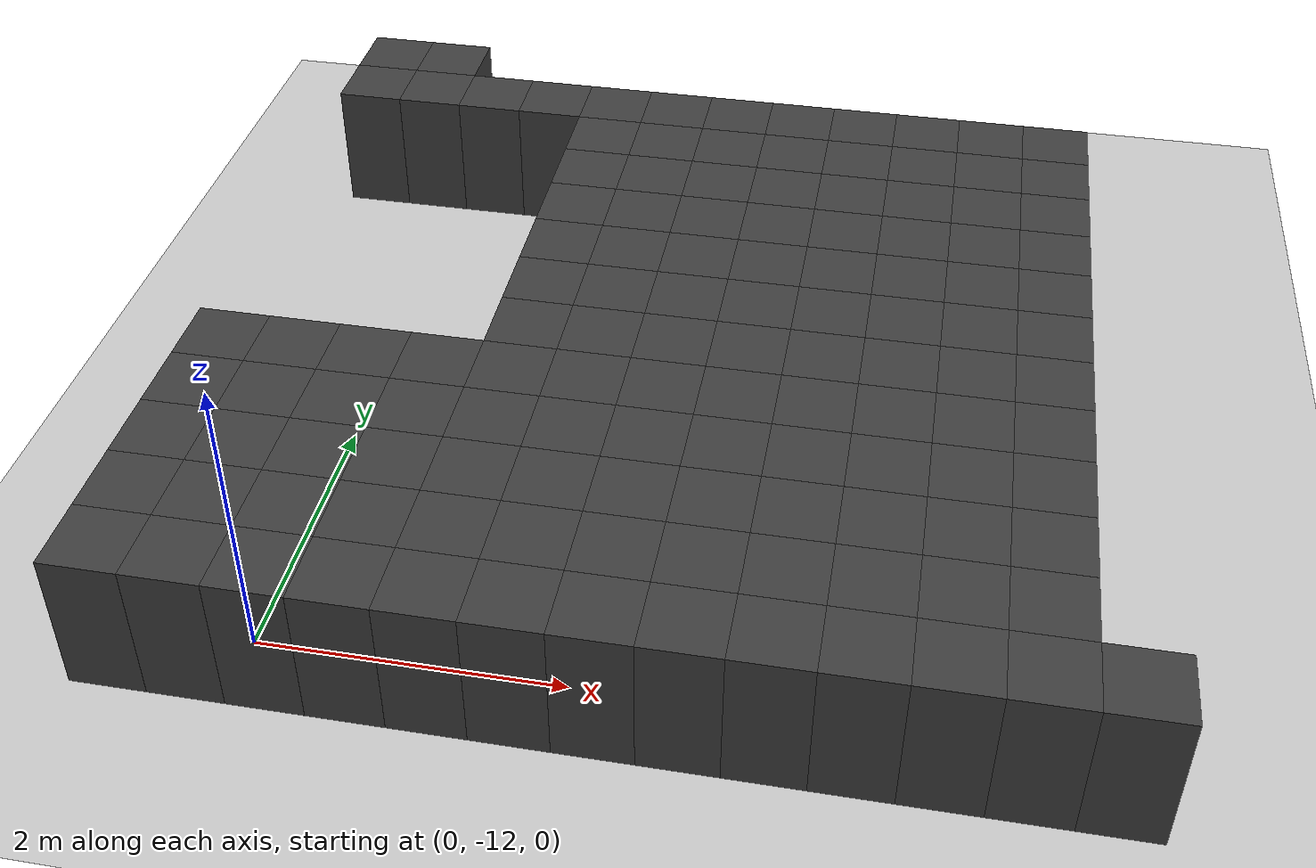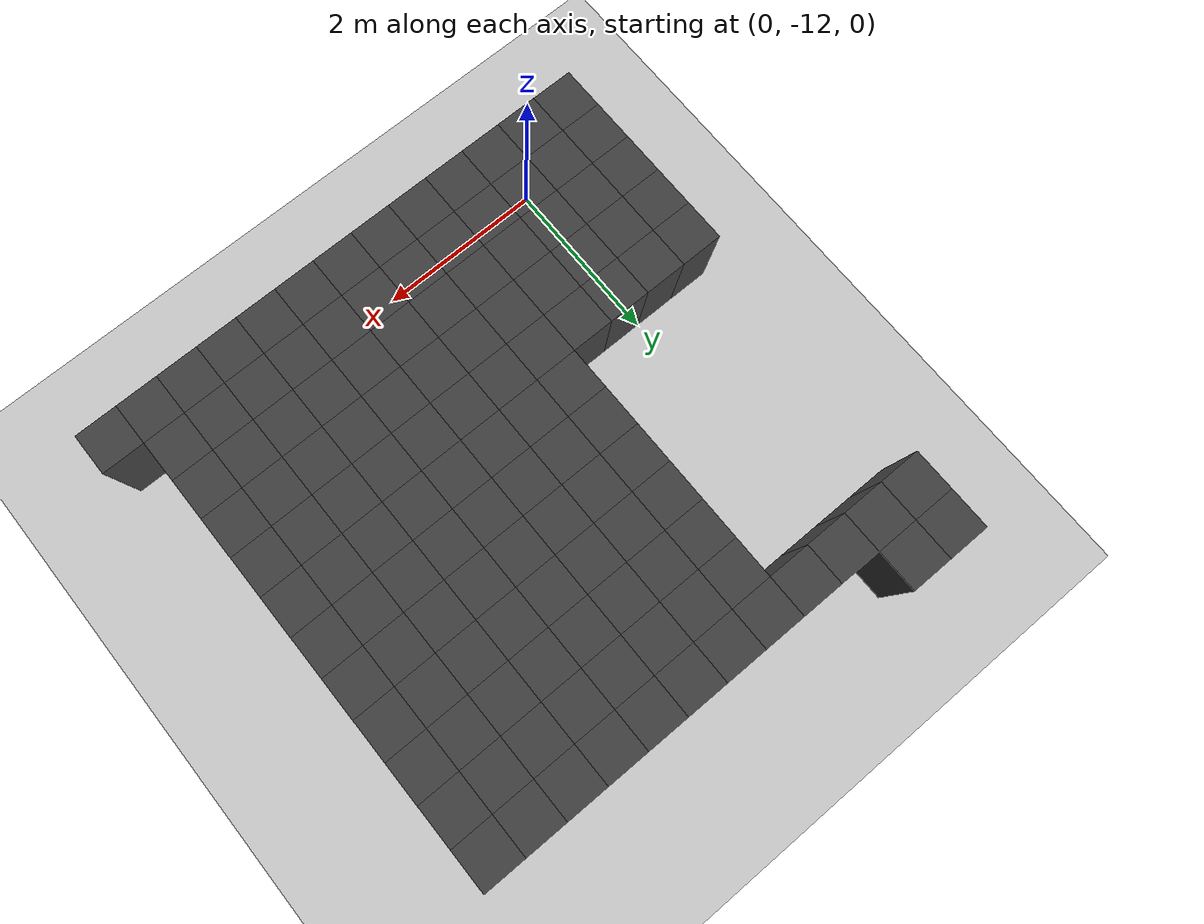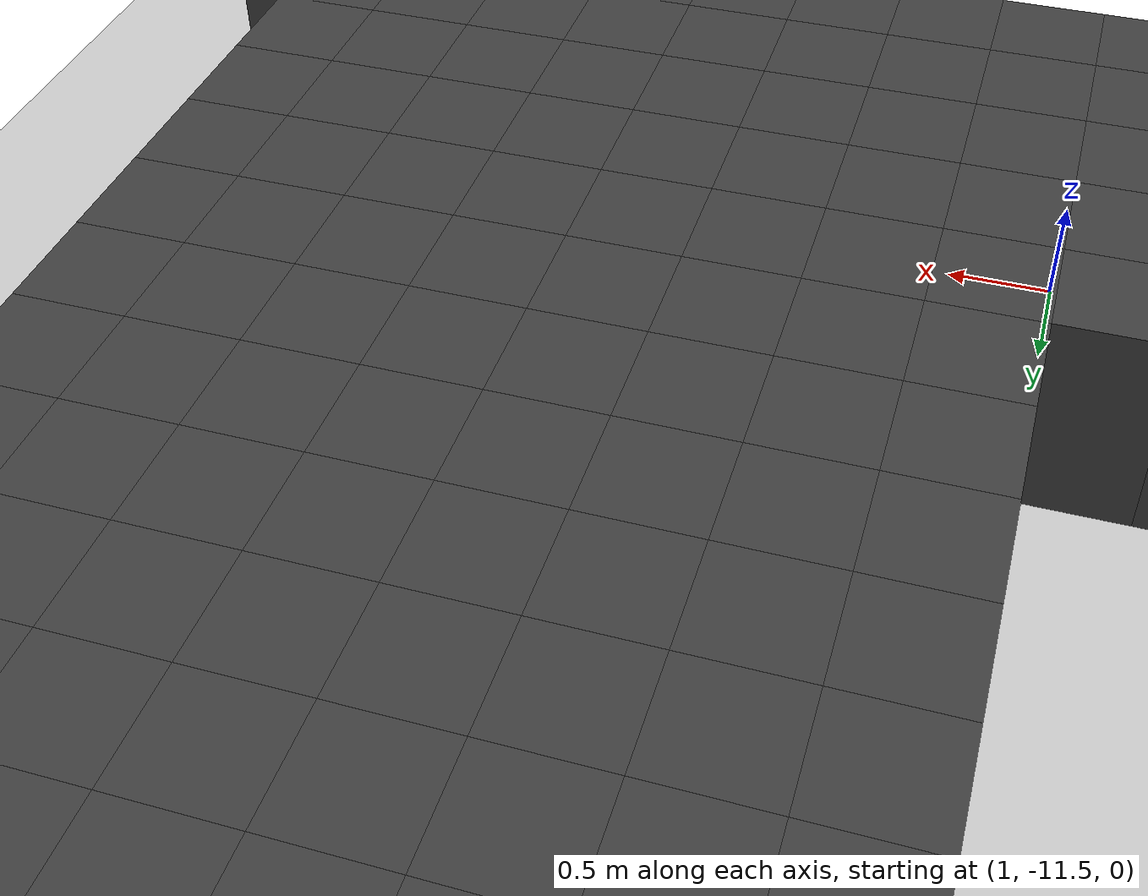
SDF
<sdf version="1.7">
 <world name="map_10726">
  <model name="ground_plane">
   <static>true</static>
   <link name="link">
    <collision name="collision">
     <geometry><plane><normal>0 0 1</normal><size>200 200</size></plane></geometry>
    </collision>
    <visual name="visual">
     <geometry><plane><normal>0 0 1</normal><size>200 200</size></plane></geometry>
     <material><ambient>0.8 0.8 0.8 1</ambient><diffuse>0.8 0.8 0.8 1</diffuse></material>
    </visual>
   </link>
  </model>
  <model name="maze_environment">
   <static>true</static>
   <link name="wall_1570">
    <pose>-0.750 -6.250 0.500 0 0 0</pose>
    <collision name="col"><geometry><box><size>0.5 0.5 1.0</size></box></geometry></collision>
    <visual name="vis">
     <geometry><box><size>0.5 0.5 1.0</size></box></geometry>
     <material><ambient>0.15 0.15 0.15 1</ambient><diffuse>0.25 0.25 0.25 1</diffuse></material>
    </visual>
   </link>
   <link name="wall_1571">
    <pose>-0.250 -6.250 0.500 0 0 0</pose>
    <collision name="col"><geometry><box><size>0.5 0.5 1.0</size></box></geometry></collision>
    <visual name="vis">
     <geometry><box><size>0.5 0.5 1.0</size></box></geometry>
     <material><ambient>0.15 0.15 0.15 1</ambient><diffuse>0.25 0.25 0.25 1</diffuse></material>
    </visual>
   </link>
   <link name="wall_1618">
    <pose>-0.750 -6.750 0.500 0 0 0</pose>
    <collision name="col"><geometry><box><size>0.5 0.5 1.0</size></box></geometry></collision>
    <visual name="vis">
     <geometry><box><size>0.5 0.5 1.0</size></box></geometry>
     <material><ambient>0.15 0.15 0.15 1</ambient><diffuse>0.25 0.25 0.25 1</diffuse></material>
    </visual>
   </link>
   <link name="wall_1619">
    <pose>-0.250 -6.750 0.500 0 0 0</pose>
    <collision name="col"><geometry><box><size>0.5 0.5 1.0</size></box></geometry></collision>
    <visual name="vis">
     <geometry><box><size>0.5 0.5 1.0</size></box></geometry>
     <material><ambient>0.15 0.15 0.15 1</ambient><diffuse>0.25 0.25 0.25 1</diffuse></material>
    </visual>
   </link>
   <link name="wall_1620">
    <pose>0.250 -6.750 0.500 0 0 0</pose>
    <collision name="col"><geometry><box><size>0.5 0.5 1.0</size></box></geometry></collision>
    <visual name="vis">
     <geometry><box><size>0.5 0.5 1.0</size></box></geometry>
     <material><ambient>0.15 0.15 0.15 1</ambient><diffuse>0.25 0.25 0.25 1</diffuse></material>
    </visual>
   </link>
   <link name="wall_1621">
    <pose>0.750 -6.750 0.500 0 0 0</pose>
    <collision name="col"><geometry><box><size>0.5 0.5 1.0</size></box></geometry></collision>
    <visual name="vis">
     <geometry><box><size>0.5 0.5 1.0</size></box></geometry>
     <material><ambient>0.15 0.15 0.15 1</ambient><diffuse>0.25 0.25 0.25 1</diffuse></material>
    </visual>
   </link>
   <link name="wall_1622">
    <pose>1.250 -6.750 0.500 0 0 0</pose>
    <collision name="col"><geometry><box><size>0.5 0.5 1.0</size></box></geometry></collision>
    <visual name="vis">
     <geometry><box><size>0.5 0.5 1.0</size></box></geometry>
     <material><ambient>0.15 0.15 0.15 1</ambient><diffuse>0.25 0.25 0.25 1</diffuse></material>
    </visual>
   </link>
   <link name="wall_1623">
    <pose>1.750 -6.750 0.500 0 0 0</pose>
    <collision name="col"><geometry><box><size>0.5 0.5 1.0</size></box></geometry></collision>
    <visual name="vis">
     <geometry><box><size>0.5 0.5 1.0</size></box></geometry>
     <material><ambient>0.15 0.15 0.15 1</ambient><diffuse>0.25 0.25 0.25 1</diffuse></material>
    </visual>
   </link>
   <link name="wall_1624">
    <pose>2.250 -6.750 0.500 0 0 0</pose>
    <collision name="col"><geometry><box><size>0.5 0.5 1.0</size></box></geometry></collision>
    <visual name="vis">
     <geometry><box><size>0.5 0.5 1.0</size></box></geometry>
     <material><ambient>0.15 0.15 0.15 1</ambient><diffuse>0.25 0.25 0.25 1</diffuse></material>
    </visual>
   </link>
   <link name="wall_1625">
    <pose>2.750 -6.750 0.500 0 0 0</pose>
    <collision name="col"><geometry><box><size>0.5 0.5 1.0</size></box></geometry></collision>
    <visual name="vis">
     <geometry><box><size>0.5 0.5 1.0</size></box></geometry>
     <material><ambient>0.15 0.15 0.15 1</ambient><diffuse>0.25 0.25 0.25 1</diffuse></material>
    </visual>
   </link>
   <link name="wall_1626">
    <pose>3.250 -6.750 0.500 0 0 0</pose>
    <collision name="col"><geometry><box><size>0.5 0.5 1.0</size></box></geometry></collision>
    <visual name="vis">
     <geometry><box><size>0.5 0.5 1.0</size></box></geometry>
     <material><ambient>0.15 0.15 0.15 1</ambient><diffuse>0.25 0.25 0.25 1</diffuse></material>
    </visual>
   </link>
   <link name="wall_1627">
    <pose>3.750 -6.750 0.500 0 0 0</pose>
    <collision name="col"><geometry><box><size>0.5 0.5 1.0</size></box></geometry></collision>
    <visual name="vis">
     <geometry><box><size>0.5 0.5 1.0</size></box></geometry>
     <material><ambient>0.15 0.15 0.15 1</ambient><diffuse>0.25 0.25 0.25 1</diffuse></material>
    </visual>
   </link>
   <link name="wall_1628">
    <pose>4.250 -6.750 0.500 0 0 0</pose>
    <collision name="col"><geometry><box><size>0.5 0.5 1.0</size></box></geometry></collision>
    <visual name="vis">
     <geometry><box><size>0.5 0.5 1.0</size></box></geometry>
     <material><ambient>0.15 0.15 0.15 1</ambient><diffuse>0.25 0.25 0.25 1</diffuse></material>
    </visual>
   </link>
   <link name="wall_1629">
    <pose>4.750 -6.750 0.500 0 0 0</pose>
    <collision name="col"><geometry><box><size>0.5 0.5 1.0</size></box></geometry></collision>
    <visual name="vis">
     <geometry><box><size>0.5 0.5 1.0</size></box></geometry>
     <material><ambient>0.15 0.15 0.15 1</ambient><diffuse>0.25 0.25 0.25 1</diffuse></material>
    </visual>
   </link>
   <link name="wall_1663">
    <pose>1.250 -7.250 0.500 0 0 0</pose>
    <collision name="col"><geometry><box><size>0.5 0.5 1.0</size></box></geometry></collision>
    <visual name="vis">
     <geometry><box><size>0.5 0.5 1.0</size></box></geometry>
     <material><ambient>0.15 0.15 0.15 1</ambient><diffuse>0.25 0.25 0.25 1</diffuse></material>
    </visual>
   </link>
   <link name="wall_1664">
    <pose>1.750 -7.250 0.500 0 0 0</pose>
    <collision name="col"><geometry><box><size>0.5 0.5 1.0</size></box></geometry></collision>
    <visual name="vis">
     <geometry><box><size>0.5 0.5 1.0</size></box></geometry>
     <material><ambient>0.15 0.15 0.15 1</ambient><diffuse>0.25 0.25 0.25 1</diffuse></material>
    </visual>
   </link>
   <link name="wall_1665">
    <pose>2.250 -7.250 0.500 0 0 0</pose>
    <collision name="col"><geometry><box><size>0.5 0.5 1.0</size></box></geometry></collision>
    <visual name="vis">
     <geometry><box><size>0.5 0.5 1.0</size></box></geometry>
     <material><ambient>0.15 0.15 0.15 1</ambient><diffuse>0.25 0.25 0.25 1</diffuse></material>
    </visual>
   </link>
   <link name="wall_1666">
    <pose>2.750 -7.250 0.500 0 0 0</pose>
    <collision name="col"><geometry><box><size>0.5 0.5 1.0</size></box></geometry></collision>
    <visual name="vis">
     <geometry><box><size>0.5 0.5 1.0</size></box></geometry>
     <material><ambient>0.15 0.15 0.15 1</ambient><diffuse>0.25 0.25 0.25 1</diffuse></material>
    </visual>
   </link>
   <link name="wall_1667">
    <pose>3.250 -7.250 0.500 0 0 0</pose>
    <collision name="col"><geometry><box><size>0.5 0.5 1.0</size></box></geometry></collision>
    <visual name="vis">
     <geometry><box><size>0.5 0.5 1.0</size></box></geometry>
     <material><ambient>0.15 0.15 0.15 1</ambient><diffuse>0.25 0.25 0.25 1</diffuse></material>
    </visual>
   </link>
   <link name="wall_1668">
    <pose>3.750 -7.250 0.500 0 0 0</pose>
    <collision name="col"><geometry><box><size>0.5 0.5 1.0</size></box></geometry></collision>
    <visual name="vis">
     <geometry><box><size>0.5 0.5 1.0</size></box></geometry>
     <material><ambient>0.15 0.15 0.15 1</ambient><diffuse>0.25 0.25 0.25 1</diffuse></material>
    </visual>
   </link>
   <link name="wall_1669">
    <pose>4.250 -7.250 0.500 0 0 0</pose>
    <collision name="col"><geometry><box><size>0.5 0.5 1.0</size></box></geometry></collision>
    <visual name="vis">
     <geometry><box><size>0.5 0.5 1.0</size></box></geometry>
     <material><ambient>0.15 0.15 0.15 1</ambient><diffuse>0.25 0.25 0.25 1</diffuse></material>
    </visual>
   </link>
   <link name="wall_1670">
    <pose>4.750 -7.250 0.500 0 0 0</pose>
    <collision name="col"><geometry><box><size>0.5 0.5 1.0</size></box></geometry></collision>
    <visual name="vis">
     <geometry><box><size>0.5 0.5 1.0</size></box></geometry>
     <material><ambient>0.15 0.15 0.15 1</ambient><diffuse>0.25 0.25 0.25 1</diffuse></material>
    </visual>
   </link>
   <link name="wall_1700">
    <pose>1.250 -7.750 0.500 0 0 0</pose>
    <collision name="col"><geometry><box><size>0.5 0.5 1.0</size></box></geometry></collision>
    <visual name="vis">
     <geometry><box><size>0.5 0.5 1.0</size></box></geometry>
     <material><ambient>0.15 0.15 0.15 1</ambient><diffuse>0.25 0.25 0.25 1</diffuse></material>
    </visual>
   </link>
   <link name="wall_1701">
    <pose>1.750 -7.750 0.500 0 0 0</pose>
    <collision name="col"><geometry><box><size>0.5 0.5 1.0</size></box></geometry></collision>
    <visual name="vis">
     <geometry><box><size>0.5 0.5 1.0</size></box></geometry>
     <material><ambient>0.15 0.15 0.15 1</ambient><diffuse>0.25 0.25 0.25 1</diffuse></material>
    </visual>
   </link>
   <link name="wall_1702">
    <pose>2.250 -7.750 0.500 0 0 0</pose>
    <collision name="col"><geometry><box><size>0.5 0.5 1.0</size></box></geometry></collision>
    <visual name="vis">
     <geometry><box><size>0.5 0.5 1.0</size></box></geometry>
     <material><ambient>0.15 0.15 0.15 1</ambient><diffuse>0.25 0.25 0.25 1</diffuse></material>
    </visual>
   </link>
   <link name="wall_1703">
    <pose>2.750 -7.750 0.500 0 0 0</pose>
    <collision name="col"><geometry><box><size>0.5 0.5 1.0</size></box></geometry></collision>
    <visual name="vis">
     <geometry><box><size>0.5 0.5 1.0</size></box></geometry>
     <material><ambient>0.15 0.15 0.15 1</ambient><diffuse>0.25 0.25 0.25 1</diffuse></material>
    </visual>
   </link>
   <link name="wall_1704">
    <pose>3.250 -7.750 0.500 0 0 0</pose>
    <collision name="col"><geometry><box><size>0.5 0.5 1.0</size></box></geometry></collision>
    <visual name="vis">
     <geometry><box><size>0.5 0.5 1.0</size></box></geometry>
     <material><ambient>0.15 0.15 0.15 1</ambient><diffuse>0.25 0.25 0.25 1</diffuse></material>
    </visual>
   </link>
   <link name="wall_1705">
    <pose>3.750 -7.750 0.500 0 0 0</pose>
    <collision name="col"><geometry><box><size>0.5 0.5 1.0</size></box></geometry></collision>
    <visual name="vis">
     <geometry><box><size>0.5 0.5 1.0</size></box></geometry>
     <material><ambient>0.15 0.15 0.15 1</ambient><diffuse>0.25 0.25 0.25 1</diffuse></material>
    </visual>
   </link>
   <link name="wall_1706">
    <pose>4.250 -7.750 0.500 0 0 0</pose>
    <collision name="col"><geometry><box><size>0.5 0.5 1.0</size></box></geometry></collision>
    <visual name="vis">
     <geometry><box><size>0.5 0.5 1.0</size></box></geometry>
     <material><ambient>0.15 0.15 0.15 1</ambient><diffuse>0.25 0.25 0.25 1</diffuse></material>
    </visual>
   </link>
   <link name="wall_1707">
    <pose>4.750 -7.750 0.500 0 0 0</pose>
    <collision name="col"><geometry><box><size>0.5 0.5 1.0</size></box></geometry></collision>
    <visual name="vis">
     <geometry><box><size>0.5 0.5 1.0</size></box></geometry>
     <material><ambient>0.15 0.15 0.15 1</ambient><diffuse>0.25 0.25 0.25 1</diffuse></material>
    </visual>
   </link>
   <link name="wall_1737">
    <pose>1.250 -8.250 0.500 0 0 0</pose>
    <collision name="col"><geometry><box><size>0.5 0.5 1.0</size></box></geometry></collision>
    <visual name="vis">
     <geometry><box><size>0.5 0.5 1.0</size></box></geometry>
     <material><ambient>0.15 0.15 0.15 1</ambient><diffuse>0.25 0.25 0.25 1</diffuse></material>
    </visual>
   </link>
   <link name="wall_1738">
    <pose>1.750 -8.250 0.500 0 0 0</pose>
    <collision name="col"><geometry><box><size>0.5 0.5 1.0</size></box></geometry></collision>
    <visual name="vis">
     <geometry><box><size>0.5 0.5 1.0</size></box></geometry>
     <material><ambient>0.15 0.15 0.15 1</ambient><diffuse>0.25 0.25 0.25 1</diffuse></material>
    </visual>
   </link>
   <link name="wall_1739">
    <pose>2.250 -8.250 0.500 0 0 0</pose>
    <collision name="col"><geometry><box><size>0.5 0.5 1.0</size></box></geometry></collision>
    <visual name="vis">
     <geometry><box><size>0.5 0.5 1.0</size></box></geometry>
     <material><ambient>0.15 0.15 0.15 1</ambient><diffuse>0.25 0.25 0.25 1</diffuse></material>
    </visual>
   </link>
   <link name="wall_1740">
    <pose>2.750 -8.250 0.500 0 0 0</pose>
    <collision name="col"><geometry><box><size>0.5 0.5 1.0</size></box></geometry></collision>
    <visual name="vis">
     <geometry><box><size>0.5 0.5 1.0</size></box></geometry>
     <material><ambient>0.15 0.15 0.15 1</ambient><diffuse>0.25 0.25 0.25 1</diffuse></material>
    </visual>
   </link>
   <link name="wall_1741">
    <pose>3.250 -8.250 0.500 0 0 0</pose>
    <collision name="col"><geometry><box><size>0.5 0.5 1.0</size></box></geometry></collision>
    <visual name="vis">
     <geometry><box><size>0.5 0.5 1.0</size></box></geometry>
     <material><ambient>0.15 0.15 0.15 1</ambient><diffuse>0.25 0.25 0.25 1</diffuse></material>
    </visual>
   </link>
   <link name="wall_1742">
    <pose>3.750 -8.250 0.500 0 0 0</pose>
    <collision name="col"><geometry><box><size>0.5 0.5 1.0</size></box></geometry></collision>
    <visual name="vis">
     <geometry><box><size>0.5 0.5 1.0</size></box></geometry>
     <material><ambient>0.15 0.15 0.15 1</ambient><diffuse>0.25 0.25 0.25 1</diffuse></material>
    </visual>
   </link>
   <link name="wall_1743">
    <pose>4.250 -8.250 0.500 0 0 0</pose>
    <collision name="col"><geometry><box><size>0.5 0.5 1.0</size></box></geometry></collision>
    <visual name="vis">
     <geometry><box><size>0.5 0.5 1.0</size></box></geometry>
     <material><ambient>0.15 0.15 0.15 1</ambient><diffuse>0.25 0.25 0.25 1</diffuse></material>
    </visual>
   </link>
   <link name="wall_1744">
    <pose>4.750 -8.250 0.500 0 0 0</pose>
    <collision name="col"><geometry><box><size>0.5 0.5 1.0</size></box></geometry></collision>
    <visual name="vis">
     <geometry><box><size>0.5 0.5 1.0</size></box></geometry>
     <material><ambient>0.15 0.15 0.15 1</ambient><diffuse>0.25 0.25 0.25 1</diffuse></material>
    </visual>
   </link>
   <link name="wall_1774">
    <pose>1.250 -8.750 0.500 0 0 0</pose>
    <collision name="col"><geometry><box><size>0.5 0.5 1.0</size></box></geometry></collision>
    <visual name="vis">
     <geometry><box><size>0.5 0.5 1.0</size></box></geometry>
     <material><ambient>0.15 0.15 0.15 1</ambient><diffuse>0.25 0.25 0.25 1</diffuse></material>
    </visual>
   </link>
   <link name="wall_1775">
    <pose>1.750 -8.750 0.500 0 0 0</pose>
    <collision name="col"><geometry><box><size>0.5 0.5 1.0</size></box></geometry></collision>
    <visual name="vis">
     <geometry><box><size>0.5 0.5 1.0</size></box></geometry>
     <material><ambient>0.15 0.15 0.15 1</ambient><diffuse>0.25 0.25 0.25 1</diffuse></material>
    </visual>
   </link>
   <link name="wall_1776">
    <pose>2.250 -8.750 0.500 0 0 0</pose>
    <collision name="col"><geometry><box><size>0.5 0.5 1.0</size></box></geometry></collision>
    <visual name="vis">
     <geometry><box><size>0.5 0.5 1.0</size></box></geometry>
     <material><ambient>0.15 0.15 0.15 1</ambient><diffuse>0.25 0.25 0.25 1</diffuse></material>
    </visual>
   </link>
   <link name="wall_1777">
    <pose>2.750 -8.750 0.500 0 0 0</pose>
    <collision name="col"><geometry><box><size>0.5 0.5 1.0</size></box></geometry></collision>
    <visual name="vis">
     <geometry><box><size>0.5 0.5 1.0</size></box></geometry>
     <material><ambient>0.15 0.15 0.15 1</ambient><diffuse>0.25 0.25 0.25 1</diffuse></material>
    </visual>
   </link>
   <link name="wall_1778">
    <pose>3.250 -8.750 0.500 0 0 0</pose>
    <collision name="col"><geometry><box><size>0.5 0.5 1.0</size></box></geometry></collision>
    <visual name="vis">
     <geometry><box><size>0.5 0.5 1.0</size></box></geometry>
     <material><ambient>0.15 0.15 0.15 1</ambient><diffuse>0.25 0.25 0.25 1</diffuse></material>
    </visual>
   </link>
   <link name="wall_1779">
    <pose>3.750 -8.750 0.500 0 0 0</pose>
    <collision name="col"><geometry><box><size>0.5 0.5 1.0</size></box></geometry></collision>
    <visual name="vis">
     <geometry><box><size>0.5 0.5 1.0</size></box></geometry>
     <material><ambient>0.15 0.15 0.15 1</ambient><diffuse>0.25 0.25 0.25 1</diffuse></material>
    </visual>
   </link>
   <link name="wall_1780">
    <pose>4.250 -8.750 0.500 0 0 0</pose>
    <collision name="col"><geometry><box><size>0.5 0.5 1.0</size></box></geometry></collision>
    <visual name="vis">
     <geometry><box><size>0.5 0.5 1.0</size></box></geometry>
     <material><ambient>0.15 0.15 0.15 1</ambient><diffuse>0.25 0.25 0.25 1</diffuse></material>
    </visual>
   </link>
   <link name="wall_1781">
    <pose>4.750 -8.750 0.500 0 0 0</pose>
    <collision name="col"><geometry><box><size>0.5 0.5 1.0</size></box></geometry></collision>
    <visual name="vis">
     <geometry><box><size>0.5 0.5 1.0</size></box></geometry>
     <material><ambient>0.15 0.15 0.15 1</ambient><diffuse>0.25 0.25 0.25 1</diffuse></material>
    </visual>
   </link>
   <link name="wall_1810">
    <pose>1.250 -9.250 0.500 0 0 0</pose>
    <collision name="col"><geometry><box><size>0.5 0.5 1.0</size></box></geometry></collision>
    <visual name="vis">
     <geometry><box><size>0.5 0.5 1.0</size></box></geometry>
     <material><ambient>0.15 0.15 0.15 1</ambient><diffuse>0.25 0.25 0.25 1</diffuse></material>
    </visual>
   </link>
   <link name="wall_1811">
    <pose>1.750 -9.250 0.500 0 0 0</pose>
    <collision name="col"><geometry><box><size>0.5 0.5 1.0</size></box></geometry></collision>
    <visual name="vis">
     <geometry><box><size>0.5 0.5 1.0</size></box></geometry>
     <material><ambient>0.15 0.15 0.15 1</ambient><diffuse>0.25 0.25 0.25 1</diffuse></material>
    </visual>
   </link>
   <link name="wall_1812">
    <pose>2.250 -9.250 0.500 0 0 0</pose>
    <collision name="col"><geometry><box><size>0.5 0.5 1.0</size></box></geometry></collision>
    <visual name="vis">
     <geometry><box><size>0.5 0.5 1.0</size></box></geometry>
     <material><ambient>0.15 0.15 0.15 1</ambient><diffuse>0.25 0.25 0.25 1</diffuse></material>
    </visual>
   </link>
   <link name="wall_1813">
    <pose>2.750 -9.250 0.500 0 0 0</pose>
    <collision name="col"><geometry><box><size>0.5 0.5 1.0</size></box></geometry></collision>
    <visual name="vis">
     <geometry><box><size>0.5 0.5 1.0</size></box></geometry>
     <material><ambient>0.15 0.15 0.15 1</ambient><diffuse>0.25 0.25 0.25 1</diffuse></material>
    </visual>
   </link>
   <link name="wall_1814">
    <pose>3.250 -9.250 0.500 0 0 0</pose>
    <collision name="col"><geometry><box><size>0.5 0.5 1.0</size></box></geometry></collision>
    <visual name="vis">
     <geometry><box><size>0.5 0.5 1.0</size></box></geometry>
     <material><ambient>0.15 0.15 0.15 1</ambient><diffuse>0.25 0.25 0.25 1</diffuse></material>
    </visual>
   </link>
   <link name="wall_1815">
    <pose>3.750 -9.250 0.500 0 0 0</pose>
    <collision name="col"><geometry><box><size>0.5 0.5 1.0</size></box></geometry></collision>
    <visual name="vis">
     <geometry><box><size>0.5 0.5 1.0</size></box></geometry>
     <material><ambient>0.15 0.15 0.15 1</ambient><diffuse>0.25 0.25 0.25 1</diffuse></material>
    </visual>
   </link>
   <link name="wall_1816">
    <pose>4.250 -9.250 0.500 0 0 0</pose>
    <collision name="col"><geometry><box><size>0.5 0.5 1.0</size></box></geometry></collision>
    <visual name="vis">
     <geometry><box><size>0.5 0.5 1.0</size></box></geometry>
     <material><ambient>0.15 0.15 0.15 1</ambient><diffuse>0.25 0.25 0.25 1</diffuse></material>
    </visual>
   </link>
   <link name="wall_1817">
    <pose>4.750 -9.250 0.500 0 0 0</pose>
    <collision name="col"><geometry><box><size>0.5 0.5 1.0</size></box></geometry></collision>
    <visual name="vis">
     <geometry><box><size>0.5 0.5 1.0</size></box></geometry>
     <material><ambient>0.15 0.15 0.15 1</ambient><diffuse>0.25 0.25 0.25 1</diffuse></material>
    </visual>
   </link>
   <link name="wall_1848">
    <pose>1.250 -9.750 0.500 0 0 0</pose>
    <collision name="col"><geometry><box><size>0.5 0.5 1.0</size></box></geometry></collision>
    <visual name="vis">
     <geometry><box><size>0.5 0.5 1.0</size></box></geometry>
     <material><ambient>0.15 0.15 0.15 1</ambient><diffuse>0.25 0.25 0.25 1</diffuse></material>
    </visual>
   </link>
   <link name="wall_1849">
    <pose>1.750 -9.750 0.500 0 0 0</pose>
    <collision name="col"><geometry><box><size>0.5 0.5 1.0</size></box></geometry></collision>
    <visual name="vis">
     <geometry><box><size>0.5 0.5 1.0</size></box></geometry>
     <material><ambient>0.15 0.15 0.15 1</ambient><diffuse>0.25 0.25 0.25 1</diffuse></material>
    </visual>
   </link>
   <link name="wall_1850">
    <pose>2.250 -9.750 0.500 0 0 0</pose>
    <collision name="col"><geometry><box><size>0.5 0.5 1.0</size></box></geometry></collision>
    <visual name="vis">
     <geometry><box><size>0.5 0.5 1.0</size></box></geometry>
     <material><ambient>0.15 0.15 0.15 1</ambient><diffuse>0.25 0.25 0.25 1</diffuse></material>
    </visual>
   </link>
   <link name="wall_1851">
    <pose>2.750 -9.750 0.500 0 0 0</pose>
    <collision name="col"><geometry><box><size>0.5 0.5 1.0</size></box></geometry></collision>
    <visual name="vis">
     <geometry><box><size>0.5 0.5 1.0</size></box></geometry>
     <material><ambient>0.15 0.15 0.15 1</ambient><diffuse>0.25 0.25 0.25 1</diffuse></material>
    </visual>
   </link>
   <link name="wall_1852">
    <pose>3.250 -9.750 0.500 0 0 0</pose>
    <collision name="col"><geometry><box><size>0.5 0.5 1.0</size></box></geometry></collision>
    <visual name="vis">
     <geometry><box><size>0.5 0.5 1.0</size></box></geometry>
     <material><ambient>0.15 0.15 0.15 1</ambient><diffuse>0.25 0.25 0.25 1</diffuse></material>
    </visual>
   </link>
   <link name="wall_1853">
    <pose>3.750 -9.750 0.500 0 0 0</pose>
    <collision name="col"><geometry><box><size>0.5 0.5 1.0</size></box></geometry></collision>
    <visual name="vis">
     <geometry><box><size>0.5 0.5 1.0</size></box></geometry>
     <material><ambient>0.15 0.15 0.15 1</ambient><diffuse>0.25 0.25 0.25 1</diffuse></material>
    </visual>
   </link>
   <link name="wall_1854">
    <pose>4.250 -9.750 0.500 0 0 0</pose>
    <collision name="col"><geometry><box><size>0.5 0.5 1.0</size></box></geometry></collision>
    <visual name="vis">
     <geometry><box><size>0.5 0.5 1.0</size></box></geometry>
     <material><ambient>0.15 0.15 0.15 1</ambient><diffuse>0.25 0.25 0.25 1</diffuse></material>
    </visual>
   </link>
   <link name="wall_1855">
    <pose>4.750 -9.750 0.500 0 0 0</pose>
    <collision name="col"><geometry><box><size>0.5 0.5 1.0</size></box></geometry></collision>
    <visual name="vis">
     <geometry><box><size>0.5 0.5 1.0</size></box></geometry>
     <material><ambient>0.15 0.15 0.15 1</ambient><diffuse>0.25 0.25 0.25 1</diffuse></material>
    </visual>
   </link>
   <link name="wall_1890">
    <pose>-0.750 -10.250 0.500 0 0 0</pose>
    <collision name="col"><geometry><box><size>0.5 0.5 1.0</size></box></geometry></collision>
    <visual name="vis">
     <geometry><box><size>0.5 0.5 1.0</size></box></geometry>
     <material><ambient>0.15 0.15 0.15 1</ambient><diffuse>0.25 0.25 0.25 1</diffuse></material>
    </visual>
   </link>
   <link name="wall_1891">
    <pose>-0.250 -10.250 0.500 0 0 0</pose>
    <collision name="col"><geometry><box><size>0.5 0.5 1.0</size></box></geometry></collision>
    <visual name="vis">
     <geometry><box><size>0.5 0.5 1.0</size></box></geometry>
     <material><ambient>0.15 0.15 0.15 1</ambient><diffuse>0.25 0.25 0.25 1</diffuse></material>
    </visual>
   </link>
   <link name="wall_1892">
    <pose>0.250 -10.250 0.500 0 0 0</pose>
    <collision name="col"><geometry><box><size>0.5 0.5 1.0</size></box></geometry></collision>
    <visual name="vis">
     <geometry><box><size>0.5 0.5 1.0</size></box></geometry>
     <material><ambient>0.15 0.15 0.15 1</ambient><diffuse>0.25 0.25 0.25 1</diffuse></material>
    </visual>
   </link>
   <link name="wall_1893">
    <pose>0.750 -10.250 0.500 0 0 0</pose>
    <collision name="col"><geometry><box><size>0.5 0.5 1.0</size></box></geometry></collision>
    <visual name="vis">
     <geometry><box><size>0.5 0.5 1.0</size></box></geometry>
     <material><ambient>0.15 0.15 0.15 1</ambient><diffuse>0.25 0.25 0.25 1</diffuse></material>
    </visual>
   </link>
   <link name="wall_1894">
    <pose>1.250 -10.250 0.500 0 0 0</pose>
    <collision name="col"><geometry><box><size>0.5 0.5 1.0</size></box></geometry></collision>
    <visual name="vis">
     <geometry><box><size>0.5 0.5 1.0</size></box></geometry>
     <material><ambient>0.15 0.15 0.15 1</ambient><diffuse>0.25 0.25 0.25 1</diffuse></material>
    </visual>
   </link>
   <link name="wall_1895">
    <pose>1.750 -10.250 0.500 0 0 0</pose>
    <collision name="col"><geometry><box><size>0.5 0.5 1.0</size></box></geometry></collision>
    <visual name="vis">
     <geometry><box><size>0.5 0.5 1.0</size></box></geometry>
     <material><ambient>0.15 0.15 0.15 1</ambient><diffuse>0.25 0.25 0.25 1</diffuse></material>
    </visual>
   </link>
   <link name="wall_1896">
    <pose>2.250 -10.250 0.500 0 0 0</pose>
    <collision name="col"><geometry><box><size>0.5 0.5 1.0</size></box></geometry></collision>
    <visual name="vis">
     <geometry><box><size>0.5 0.5 1.0</size></box></geometry>
     <material><ambient>0.15 0.15 0.15 1</ambient><diffuse>0.25 0.25 0.25 1</diffuse></material>
    </visual>
   </link>
   <link name="wall_1897">
    <pose>2.750 -10.250 0.500 0 0 0</pose>
    <collision name="col"><geometry><box><size>0.5 0.5 1.0</size></box></geometry></collision>
    <visual name="vis">
     <geometry><box><size>0.5 0.5 1.0</size></box></geometry>
     <material><ambient>0.15 0.15 0.15 1</ambient><diffuse>0.25 0.25 0.25 1</diffuse></material>
    </visual>
   </link>
   <link name="wall_1898">
    <pose>3.250 -10.250 0.500 0 0 0</pose>
    <collision name="col"><geometry><box><size>0.5 0.5 1.0</size></box></geometry></collision>
    <visual name="vis">
     <geometry><box><size>0.5 0.5 1.0</size></box></geometry>
     <material><ambient>0.15 0.15 0.15 1</ambient><diffuse>0.25 0.25 0.25 1</diffuse></material>
    </visual>
   </link>
   <link name="wall_1899">
    <pose>3.750 -10.250 0.500 0 0 0</pose>
    <collision name="col"><geometry><box><size>0.5 0.5 1.0</size></box></geometry></collision>
    <visual name="vis">
     <geometry><box><size>0.5 0.5 1.0</size></box></geometry>
     <material><ambient>0.15 0.15 0.15 1</ambient><diffuse>0.25 0.25 0.25 1</diffuse></material>
    </visual>
   </link>
   <link name="wall_1900">
    <pose>4.250 -10.250 0.500 0 0 0</pose>
    <collision name="col"><geometry><box><size>0.5 0.5 1.0</size></box></geometry></collision>
    <visual name="vis">
     <geometry><box><size>0.5 0.5 1.0</size></box></geometry>
     <material><ambient>0.15 0.15 0.15 1</ambient><diffuse>0.25 0.25 0.25 1</diffuse></material>
    </visual>
   </link>
   <link name="wall_1901">
    <pose>4.750 -10.250 0.500 0 0 0</pose>
    <collision name="col"><geometry><box><size>0.5 0.5 1.0</size></box></geometry></collision>
    <visual name="vis">
     <geometry><box><size>0.5 0.5 1.0</size></box></geometry>
     <material><ambient>0.15 0.15 0.15 1</ambient><diffuse>0.25 0.25 0.25 1</diffuse></material>
    </visual>
   </link>
   <link name="wall_1936">
    <pose>-0.750 -10.750 0.500 0 0 0</pose>
    <collision name="col"><geometry><box><size>0.5 0.5 1.0</size></box></geometry></collision>
    <visual name="vis">
     <geometry><box><size>0.5 0.5 1.0</size></box></geometry>
     <material><ambient>0.15 0.15 0.15 1</ambient><diffuse>0.25 0.25 0.25 1</diffuse></material>
    </visual>
   </link>
   <link name="wall_1937">
    <pose>-0.250 -10.750 0.500 0 0 0</pose>
    <collision name="col"><geometry><box><size>0.5 0.5 1.0</size></box></geometry></collision>
    <visual name="vis">
     <geometry><box><size>0.5 0.5 1.0</size></box></geometry>
     <material><ambient>0.15 0.15 0.15 1</ambient><diffuse>0.25 0.25 0.25 1</diffuse></material>
    </visual>
   </link>
   <link name="wall_1938">
    <pose>0.250 -10.750 0.500 0 0 0</pose>
    <collision name="col"><geometry><box><size>0.5 0.5 1.0</size></box></geometry></collision>
    <visual name="vis">
     <geometry><box><size>0.5 0.5 1.0</size></box></geometry>
     <material><ambient>0.15 0.15 0.15 1</ambient><diffuse>0.25 0.25 0.25 1</diffuse></material>
    </visual>
   </link>
   <link name="wall_1939">
    <pose>0.750 -10.750 0.500 0 0 0</pose>
    <collision name="col"><geometry><box><size>0.5 0.5 1.0</size></box></geometry></collision>
    <visual name="vis">
     <geometry><box><size>0.5 0.5 1.0</size></box></geometry>
     <material><ambient>0.15 0.15 0.15 1</ambient><diffuse>0.25 0.25 0.25 1</diffuse></material>
    </visual>
   </link>
   <link name="wall_1940">
    <pose>1.250 -10.750 0.500 0 0 0</pose>
    <collision name="col"><geometry><box><size>0.5 0.5 1.0</size></box></geometry></collision>
    <visual name="vis">
     <geometry><box><size>0.5 0.5 1.0</size></box></geometry>
     <material><ambient>0.15 0.15 0.15 1</ambient><diffuse>0.25 0.25 0.25 1</diffuse></material>
    </visual>
   </link>
   <link name="wall_1941">
    <pose>1.750 -10.750 0.500 0 0 0</pose>
    <collision name="col"><geometry><box><size>0.5 0.5 1.0</size></box></geometry></collision>
    <visual name="vis">
     <geometry><box><size>0.5 0.5 1.0</size></box></geometry>
     <material><ambient>0.15 0.15 0.15 1</ambient><diffuse>0.25 0.25 0.25 1</diffuse></material>
    </visual>
   </link>
   <link name="wall_1942">
    <pose>2.250 -10.750 0.500 0 0 0</pose>
    <collision name="col"><geometry><box><size>0.5 0.5 1.0</size></box></geometry></collision>
    <visual name="vis">
     <geometry><box><size>0.5 0.5 1.0</size></box></geometry>
     <material><ambient>0.15 0.15 0.15 1</ambient><diffuse>0.25 0.25 0.25 1</diffuse></material>
    </visual>
   </link>
   <link name="wall_1943">
    <pose>2.750 -10.750 0.500 0 0 0</pose>
    <collision name="col"><geometry><box><size>0.5 0.5 1.0</size></box></geometry></collision>
    <visual name="vis">
     <geometry><box><size>0.5 0.5 1.0</size></box></geometry>
     <material><ambient>0.15 0.15 0.15 1</ambient><diffuse>0.25 0.25 0.25 1</diffuse></material>
    </visual>
   </link>
   <link name="wall_1944">
    <pose>3.250 -10.750 0.500 0 0 0</pose>
    <collision name="col"><geometry><box><size>0.5 0.5 1.0</size></box></geometry></collision>
    <visual name="vis">
     <geometry><box><size>0.5 0.5 1.0</size></box></geometry>
     <material><ambient>0.15 0.15 0.15 1</ambient><diffuse>0.25 0.25 0.25 1</diffuse></material>
    </visual>
   </link>
   <link name="wall_1945">
    <pose>3.750 -10.750 0.500 0 0 0</pose>
    <collision name="col"><geometry><box><size>0.5 0.5 1.0</size></box></geometry></collision>
    <visual name="vis">
     <geometry><box><size>0.5 0.5 1.0</size></box></geometry>
     <material><ambient>0.15 0.15 0.15 1</ambient><diffuse>0.25 0.25 0.25 1</diffuse></material>
    </visual>
   </link>
   <link name="wall_1946">
    <pose>4.250 -10.750 0.500 0 0 0</pose>
    <collision name="col"><geometry><box><size>0.5 0.5 1.0</size></box></geometry></collision>
    <visual name="vis">
     <geometry><box><size>0.5 0.5 1.0</size></box></geometry>
     <material><ambient>0.15 0.15 0.15 1</ambient><diffuse>0.25 0.25 0.25 1</diffuse></material>
    </visual>
   </link>
   <link name="wall_1947">
    <pose>4.750 -10.750 0.500 0 0 0</pose>
    <collision name="col"><geometry><box><size>0.5 0.5 1.0</size></box></geometry></collision>
    <visual name="vis">
     <geometry><box><size>0.5 0.5 1.0</size></box></geometry>
     <material><ambient>0.15 0.15 0.15 1</ambient><diffuse>0.25 0.25 0.25 1</diffuse></material>
    </visual>
   </link>
   <link name="wall_1982">
    <pose>-0.750 -11.250 0.500 0 0 0</pose>
    <collision name="col"><geometry><box><size>0.5 0.5 1.0</size></box></geometry></collision>
    <visual name="vis">
     <geometry><box><size>0.5 0.5 1.0</size></box></geometry>
     <material><ambient>0.15 0.15 0.15 1</ambient><diffuse>0.25 0.25 0.25 1</diffuse></material>
    </visual>
   </link>
   <link name="wall_1983">
    <pose>-0.250 -11.250 0.500 0 0 0</pose>
    <collision name="col"><geometry><box><size>0.5 0.5 1.0</size></box></geometry></collision>
    <visual name="vis">
     <geometry><box><size>0.5 0.5 1.0</size></box></geometry>
     <material><ambient>0.15 0.15 0.15 1</ambient><diffuse>0.25 0.25 0.25 1</diffuse></material>
    </visual>
   </link>
   <link name="wall_1984">
    <pose>0.250 -11.250 0.500 0 0 0</pose>
    <collision name="col"><geometry><box><size>0.5 0.5 1.0</size></box></geometry></collision>
    <visual name="vis">
     <geometry><box><size>0.5 0.5 1.0</size></box></geometry>
     <material><ambient>0.15 0.15 0.15 1</ambient><diffuse>0.25 0.25 0.25 1</diffuse></material>
    </visual>
   </link>
   <link name="wall_1985">
    <pose>0.750 -11.250 0.500 0 0 0</pose>
    <collision name="col"><geometry><box><size>0.5 0.5 1.0</size></box></geometry></collision>
    <visual name="vis">
     <geometry><box><size>0.5 0.5 1.0</size></box></geometry>
     <material><ambient>0.15 0.15 0.15 1</ambient><diffuse>0.25 0.25 0.25 1</diffuse></material>
    </visual>
   </link>
   <link name="wall_1986">
    <pose>1.250 -11.250 0.500 0 0 0</pose>
    <collision name="col"><geometry><box><size>0.5 0.5 1.0</size></box></geometry></collision>
    <visual name="vis">
     <geometry><box><size>0.5 0.5 1.0</size></box></geometry>
     <material><ambient>0.15 0.15 0.15 1</ambient><diffuse>0.25 0.25 0.25 1</diffuse></material>
    </visual>
   </link>
   <link name="wall_1987">
    <pose>1.750 -11.250 0.500 0 0 0</pose>
    <collision name="col"><geometry><box><size>0.5 0.5 1.0</size></box></geometry></collision>
    <visual name="vis">
     <geometry><box><size>0.5 0.5 1.0</size></box></geometry>
     <material><ambient>0.15 0.15 0.15 1</ambient><diffuse>0.25 0.25 0.25 1</diffuse></material>
    </visual>
   </link>
   <link name="wall_1988">
    <pose>2.250 -11.250 0.500 0 0 0</pose>
    <collision name="col"><geometry><box><size>0.5 0.5 1.0</size></box></geometry></collision>
    <visual name="vis">
     <geometry><box><size>0.5 0.5 1.0</size></box></geometry>
     <material><ambient>0.15 0.15 0.15 1</ambient><diffuse>0.25 0.25 0.25 1</diffuse></material>
    </visual>
   </link>
   <link name="wall_1989">
    <pose>2.750 -11.250 0.500 0 0 0</pose>
    <collision name="col"><geometry><box><size>0.5 0.5 1.0</size></box></geometry></collision>
    <visual name="vis">
     <geometry><box><size>0.5 0.5 1.0</size></box></geometry>
     <material><ambient>0.15 0.15 0.15 1</ambient><diffuse>0.25 0.25 0.25 1</diffuse></material>
    </visual>
   </link>
   <link name="wall_1990">
    <pose>3.250 -11.250 0.500 0 0 0</pose>
    <collision name="col"><geometry><box><size>0.5 0.5 1.0</size></box></geometry></collision>
    <visual name="vis">
     <geometry><box><size>0.5 0.5 1.0</size></box></geometry>
     <material><ambient>0.15 0.15 0.15 1</ambient><diffuse>0.25 0.25 0.25 1</diffuse></material>
    </visual>
   </link>
   <link name="wall_1991">
    <pose>3.750 -11.250 0.500 0 0 0</pose>
    <collision name="col"><geometry><box><size>0.5 0.5 1.0</size></box></geometry></collision>
    <visual name="vis">
     <geometry><box><size>0.5 0.5 1.0</size></box></geometry>
     <material><ambient>0.15 0.15 0.15 1</ambient><diffuse>0.25 0.25 0.25 1</diffuse></material>
    </visual>
   </link>
   <link name="wall_1992">
    <pose>4.250 -11.250 0.500 0 0 0</pose>
    <collision name="col"><geometry><box><size>0.5 0.5 1.0</size></box></geometry></collision>
    <visual name="vis">
     <geometry><box><size>0.5 0.5 1.0</size></box></geometry>
     <material><ambient>0.15 0.15 0.15 1</ambient><diffuse>0.25 0.25 0.25 1</diffuse></material>
    </visual>
   </link>
   <link name="wall_1993">
    <pose>4.750 -11.250 0.500 0 0 0</pose>
    <collision name="col"><geometry><box><size>0.5 0.5 1.0</size></box></geometry></collision>
    <visual name="vis">
     <geometry><box><size>0.5 0.5 1.0</size></box></geometry>
     <material><ambient>0.15 0.15 0.15 1</ambient><diffuse>0.25 0.25 0.25 1</diffuse></material>
    </visual>
   </link>
   <link name="wall_2026">
    <pose>-0.750 -11.750 0.500 0 0 0</pose>
    <collision name="col"><geometry><box><size>0.5 0.5 1.0</size></box></geometry></collision>
    <visual name="vis">
     <geometry><box><size>0.5 0.5 1.0</size></box></geometry>
     <material><ambient>0.15 0.15 0.15 1</ambient><diffuse>0.25 0.25 0.25 1</diffuse></material>
    </visual>
   </link>
   <link name="wall_2027">
    <pose>-0.250 -11.750 0.500 0 0 0</pose>
    <collision name="col"><geometry><box><size>0.5 0.5 1.0</size></box></geometry></collision>
    <visual name="vis">
     <geometry><box><size>0.5 0.5 1.0</size></box></geometry>
     <material><ambient>0.15 0.15 0.15 1</ambient><diffuse>0.25 0.25 0.25 1</diffuse></material>
    </visual>
   </link>
   <link name="wall_2028">
    <pose>0.250 -11.750 0.500 0 0 0</pose>
    <collision name="col"><geometry><box><size>0.5 0.5 1.0</size></box></geometry></collision>
    <visual name="vis">
     <geometry><box><size>0.5 0.5 1.0</size></box></geometry>
     <material><ambient>0.15 0.15 0.15 1</ambient><diffuse>0.25 0.25 0.25 1</diffuse></material>
    </visual>
   </link>
   <link name="wall_2029">
    <pose>0.750 -11.750 0.500 0 0 0</pose>
    <collision name="col"><geometry><box><size>0.5 0.5 1.0</size></box></geometry></collision>
    <visual name="vis">
     <geometry><box><size>0.5 0.5 1.0</size></box></geometry>
     <material><ambient>0.15 0.15 0.15 1</ambient><diffuse>0.25 0.25 0.25 1</diffuse></material>
    </visual>
   </link>
   <link name="wall_2030">
    <pose>1.250 -11.750 0.500 0 0 0</pose>
    <collision name="col"><geometry><box><size>0.5 0.5 1.0</size></box></geometry></collision>
    <visual name="vis">
     <geometry><box><size>0.5 0.5 1.0</size></box></geometry>
     <material><ambient>0.15 0.15 0.15 1</ambient><diffuse>0.25 0.25 0.25 1</diffuse></material>
    </visual>
   </link>
   <link name="wall_2031">
    <pose>1.750 -11.750 0.500 0 0 0</pose>
    <collision name="col"><geometry><box><size>0.5 0.5 1.0</size></box></geometry></collision>
    <visual name="vis">
     <geometry><box><size>0.5 0.5 1.0</size></box></geometry>
     <material><ambient>0.15 0.15 0.15 1</ambient><diffuse>0.25 0.25 0.25 1</diffuse></material>
    </visual>
   </link>
   <link name="wall_2032">
    <pose>2.250 -11.750 0.500 0 0 0</pose>
    <collision name="col"><geometry><box><size>0.5 0.5 1.0</size></box></geometry></collision>
    <visual name="vis">
     <geometry><box><size>0.5 0.5 1.0</size></box></geometry>
     <material><ambient>0.15 0.15 0.15 1</ambient><diffuse>0.25 0.25 0.25 1</diffuse></material>
    </visual>
   </link>
   <link name="wall_2033">
    <pose>2.750 -11.750 0.500 0 0 0</pose>
    <collision name="col"><geometry><box><size>0.5 0.5 1.0</size></box></geometry></collision>
    <visual name="vis">
     <geometry><box><size>0.5 0.5 1.0</size></box></geometry>
     <material><ambient>0.15 0.15 0.15 1</ambient><diffuse>0.25 0.25 0.25 1</diffuse></material>
    </visual>
   </link>
   <link name="wall_2034">
    <pose>3.250 -11.750 0.500 0 0 0</pose>
    <collision name="col"><geometry><box><size>0.5 0.5 1.0</size></box></geometry></collision>
    <visual name="vis">
     <geometry><box><size>0.5 0.5 1.0</size></box></geometry>
     <material><ambient>0.15 0.15 0.15 1</ambient><diffuse>0.25 0.25 0.25 1</diffuse></material>
    </visual>
   </link>
   <link name="wall_2035">
    <pose>3.750 -11.750 0.500 0 0 0</pose>
    <collision name="col"><geometry><box><size>0.5 0.5 1.0</size></box></geometry></collision>
    <visual name="vis">
     <geometry><box><size>0.5 0.5 1.0</size></box></geometry>
     <material><ambient>0.15 0.15 0.15 1</ambient><diffuse>0.25 0.25 0.25 1</diffuse></material>
    </visual>
   </link>
   <link name="wall_2036">
    <pose>4.250 -11.750 0.500 0 0 0</pose>
    <collision name="col"><geometry><box><size>0.5 0.5 1.0</size></box></geometry></collision>
    <visual name="vis">
     <geometry><box><size>0.5 0.5 1.0</size></box></geometry>
     <material><ambient>0.15 0.15 0.15 1</ambient><diffuse>0.25 0.25 0.25 1</diffuse></material>
    </visual>
   </link>
   <link name="wall_2037">
    <pose>4.750 -11.750 0.500 0 0 0</pose>
    <collision name="col"><geometry><box><size>0.5 0.5 1.0</size></box></geometry></collision>
    <visual name="vis">
     <geometry><box><size>0.5 0.5 1.0</size></box></geometry>
     <material><ambient>0.15 0.15 0.15 1</ambient><diffuse>0.25 0.25 0.25 1</diffuse></material>
    </visual>
   </link>
   <link name="wall_2073">
    <pose>-0.750 -12.250 0.500 0 0 0</pose>
    <collision name="col"><geometry><box><size>0.5 0.5 1.0</size></box></geometry></collision>
    <visual name="vis">
     <geometry><box><size>0.5 0.5 1.0</size></box></geometry>
     <material><ambient>0.15 0.15 0.15 1</ambient><diffuse>0.25 0.25 0.25 1</diffuse></material>
    </visual>
   </link>
   <link name="wall_2074">
    <pose>-0.250 -12.250 0.500 0 0 0</pose>
    <collision name="col"><geometry><box><size>0.5 0.5 1.0</size></box></geometry></collision>
    <visual name="vis">
     <geometry><box><size>0.5 0.5 1.0</size></box></geometry>
     <material><ambient>0.15 0.15 0.15 1</ambient><diffuse>0.25 0.25 0.25 1</diffuse></material>
    </visual>
   </link>
   <link name="wall_2075">
    <pose>0.250 -12.250 0.500 0 0 0</pose>
    <collision name="col"><geometry><box><size>0.5 0.5 1.0</size></box></geometry></collision>
    <visual name="vis">
     <geometry><box><size>0.5 0.5 1.0</size></box></geometry>
     <material><ambient>0.15 0.15 0.15 1</ambient><diffuse>0.25 0.25 0.25 1</diffuse></material>
    </visual>
   </link>
   <link name="wall_2076">
    <pose>0.750 -12.250 0.500 0 0 0</pose>
    <collision name="col"><geometry><box><size>0.5 0.5 1.0</size></box></geometry></collision>
    <visual name="vis">
     <geometry><box><size>0.5 0.5 1.0</size></box></geometry>
     <material><ambient>0.15 0.15 0.15 1</ambient><diffuse>0.25 0.25 0.25 1</diffuse></material>
    </visual>
   </link>
   <link name="wall_2077">
    <pose>1.250 -12.250 0.500 0 0 0</pose>
    <collision name="col"><geometry><box><size>0.5 0.5 1.0</size></box></geometry></collision>
    <visual name="vis">
     <geometry><box><size>0.5 0.5 1.0</size></box></geometry>
     <material><ambient>0.15 0.15 0.15 1</ambient><diffuse>0.25 0.25 0.25 1</diffuse></material>
    </visual>
   </link>
   <link name="wall_2078">
    <pose>1.750 -12.250 0.500 0 0 0</pose>
    <collision name="col"><geometry><box><size>0.5 0.5 1.0</size></box></geometry></collision>
    <visual name="vis">
     <geometry><box><size>0.5 0.5 1.0</size></box></geometry>
     <material><ambient>0.15 0.15 0.15 1</ambient><diffuse>0.25 0.25 0.25 1</diffuse></material>
    </visual>
   </link>
   <link name="wall_2079">
    <pose>2.250 -12.250 0.500 0 0 0</pose>
    <collision name="col"><geometry><box><size>0.5 0.5 1.0</size></box></geometry></collision>
    <visual name="vis">
     <geometry><box><size>0.5 0.5 1.0</size></box></geometry>
     <material><ambient>0.15 0.15 0.15 1</ambient><diffuse>0.25 0.25 0.25 1</diffuse></material>
    </visual>
   </link>
   <link name="wall_2080">
    <pose>2.750 -12.250 0.500 0 0 0</pose>
    <collision name="col"><geometry><box><size>0.5 0.5 1.0</size></box></geometry></collision>
    <visual name="vis">
     <geometry><box><size>0.5 0.5 1.0</size></box></geometry>
     <material><ambient>0.15 0.15 0.15 1</ambient><diffuse>0.25 0.25 0.25 1</diffuse></material>
    </visual>
   </link>
   <link name="wall_2081">
    <pose>3.250 -12.250 0.500 0 0 0</pose>
    <collision name="col"><geometry><box><size>0.5 0.5 1.0</size></box></geometry></collision>
    <visual name="vis">
     <geometry><box><size>0.5 0.5 1.0</size></box></geometry>
     <material><ambient>0.15 0.15 0.15 1</ambient><diffuse>0.25 0.25 0.25 1</diffuse></material>
    </visual>
   </link>
   <link name="wall_2082">
    <pose>3.750 -12.250 0.500 0 0 0</pose>
    <collision name="col"><geometry><box><size>0.5 0.5 1.0</size></box></geometry></collision>
    <visual name="vis">
     <geometry><box><size>0.5 0.5 1.0</size></box></geometry>
     <material><ambient>0.15 0.15 0.15 1</ambient><diffuse>0.25 0.25 0.25 1</diffuse></material>
    </visual>
   </link>
   <link name="wall_2083">
    <pose>4.250 -12.250 0.500 0 0 0</pose>
    <collision name="col"><geometry><box><size>0.5 0.5 1.0</size></box></geometry></collision>
    <visual name="vis">
     <geometry><box><size>0.5 0.5 1.0</size></box></geometry>
     <material><ambient>0.15 0.15 0.15 1</ambient><diffuse>0.25 0.25 0.25 1</diffuse></material>
    </visual>
   </link>
   <link name="wall_2084">
    <pose>4.750 -12.250 0.500 0 0 0</pose>
    <collision name="col"><geometry><box><size>0.5 0.5 1.0</size></box></geometry></collision>
    <visual name="vis">
     <geometry><box><size>0.5 0.5 1.0</size></box></geometry>
     <material><ambient>0.15 0.15 0.15 1</ambient><diffuse>0.25 0.25 0.25 1</diffuse></material>
    </visual>
   </link>
   <link name="wall_2085">
    <pose>5.250 -12.250 0.500 0 0 0</pose>
    <collision name="col"><geometry><box><size>0.5 0.5 1.0</size></box></geometry></collision>
    <visual name="vis">
     <geometry><box><size>0.5 0.5 1.0</size></box></geometry>
     <material><ambient>0.15 0.15 0.15 1</ambient><diffuse>0.25 0.25 0.25 1</diffuse></material>
    </visual>
   </link>
  </model>
 </world>
</sdf>
